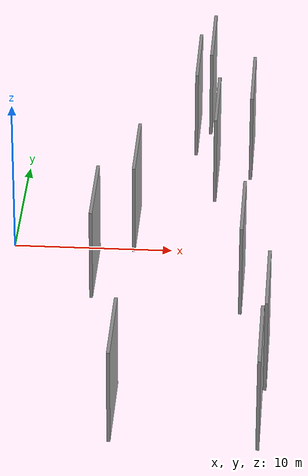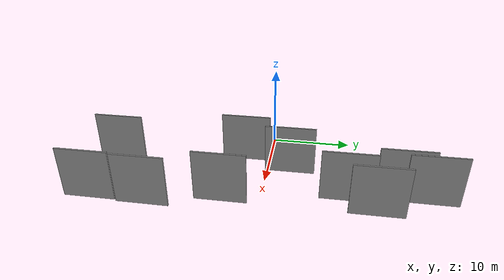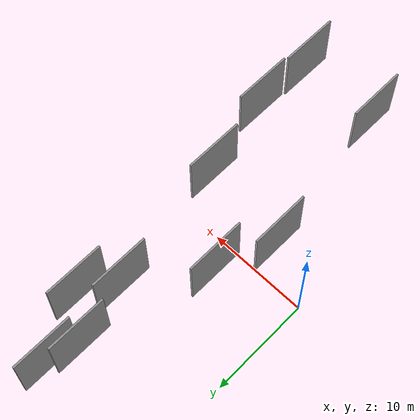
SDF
<sdf version="1.6">
 <world name="default">
  <scene>
   <sky><clouds><speed>12</speed></clouds></sky>
   <ambient>0.4 0.4 0.4 1</ambient>
   <background>0.7 0.7 0.7 1</background>
   <shadows>1</shadows>
  </scene>
  <gravity>0 0 -9.8066</gravity>
  <magnetic_field>6e-06 2.3e-05 -4.2e-05</magnetic_field>
  <physics default="0" name="default_physics" type="ode">
   <ode>
    <solver>
     <type>quick</type>
     <iters>10</iters>
     <sor>1.0</sor>
     <use_dynamic_moi_rescaling>0</use_dynamic_moi_rescaling>
    </solver>
    <constraints>
     <cfm>0</cfm>
     <erp>0.2</erp>
     <contact_max_correcting_vel>100</contact_max_correcting_vel>
     <contact_surface_layer>0.001</contact_surface_layer>
    </constraints>
   </ode>
   <max_step_size>0.004</max_step_size>
   <real_time_factor>1</real_time_factor>
   <real_time_update_rate>250</real_time_update_rate>
  </physics>
  <light name="sun" type="directional">
   <pose>0 0 10 0 0 0</pose>
   <diffuse>0.8 0.8 0.8 1</diffuse>
   <specular>0.2 0.2 0.2 1</specular>
   <attenuation>
    <range>1000</range>
    <constant>0.9</constant>
    <linear>0.01</linear>
    <quadratic>0.001</quadratic>
   </attenuation>
   <direction>-0.5 0.1 -0.9</direction>
  </light>
  <model name="grey_wall_1">
   <static>1</static>
   <pose>16.1557 -18.9139 0.0 0.000000 0.000000 1.570796</pose>
   <link name="link">
    <pose>0 0 3.00 0 0 0</pose>
    <collision name="collision"><geometry><box><size>6.00 0.2 6.00</size></box></geometry></collision>
    <visual name="visual">
     <cast_shadows>0</cast_shadows>
     <geometry><box><size>6.00 0.2 6.00</size></box></geometry>
     <material>
      <script>
       <uri>model://grey_wall/materials/scripts</uri>
       <uri>model://grey_wall/materials/textures</uri>
       <name>vrc/grey_wall</name>
      </script>
     </material>
    </visual>
   </link>
  </model>
  <model name="grey_wall_2">
   <static>1</static>
   <pose>10.8612 15.6181 0.0 0.000000 0.000000 1.570796</pose>
   <link name="link">
    <pose>0 0 3.00 0 0 0</pose>
    <collision name="collision"><geometry><box><size>6.00 0.2 6.00</size></box></geometry></collision>
    <visual name="visual">
     <cast_shadows>0</cast_shadows>
     <geometry><box><size>6.00 0.2 6.00</size></box></geometry>
     <material>
      <script>
       <uri>model://grey_wall/materials/scripts</uri>
       <uri>model://grey_wall/materials/textures</uri>
       <name>vrc/grey_wall</name>
      </script>
     </material>
    </visual>
   </link>
  </model>
  <model name="grey_wall_3">
   <static>1</static>
   <pose>5.3379 -2.9903 0.0 0.000000 0.000000 1.570796</pose>
   <link name="link">
    <pose>0 0 3.00 0 0 0</pose>
    <collision name="collision"><geometry><box><size>6.00 0.2 6.00</size></box></geometry></collision>
    <visual name="visual">
     <cast_shadows>0</cast_shadows>
     <geometry><box><size>6.00 0.2 6.00</size></box></geometry>
     <material>
      <script>
       <uri>model://grey_wall/materials/scripts</uri>
       <uri>model://grey_wall/materials/textures</uri>
       <name>vrc/grey_wall</name>
      </script>
     </material>
    </visual>
   </link>
  </model>
  <model name="grey_wall_4">
   <static>1</static>
   <pose>7.5765 2.7036 0.0 0.000000 0.000000 1.570796</pose>
   <link name="link">
    <pose>0 0 3.00 0 0 0</pose>
    <collision name="collision"><geometry><box><size>6.00 0.2 6.00</size></box></geometry></collision>
    <visual name="visual">
     <cast_shadows>0</cast_shadows>
     <geometry><box><size>6.00 0.2 6.00</size></box></geometry>
     <material>
      <script>
       <uri>model://grey_wall/materials/scripts</uri>
       <uri>model://grey_wall/materials/textures</uri>
       <name>vrc/grey_wall</name>
      </script>
     </material>
    </visual>
   </link>
  </model>
  <model name="grey_wall_5">
   <static>1</static>
   <pose>14.5778 -4.3327 0.0 0.000000 0.000000 1.570796</pose>
   <link name="link">
    <pose>0 0 3.00 0 0 0</pose>
    <collision name="collision"><geometry><box><size>6.00 0.2 6.00</size></box></geometry></collision>
    <visual name="visual">
     <cast_shadows>0</cast_shadows>
     <geometry><box><size>6.00 0.2 6.00</size></box></geometry>
     <material>
      <script>
       <uri>model://grey_wall/materials/scripts</uri>
       <uri>model://grey_wall/materials/textures</uri>
       <name>vrc/grey_wall</name>
      </script>
     </material>
    </visual>
   </link>
  </model>
  <model name="grey_wall_6">
   <static>1</static>
   <pose>11.6989 18.6061 0.0 0.000000 0.000000 1.570796</pose>
   <link name="link">
    <pose>0 0 3.00 0 0 0</pose>
    <collision name="collision"><geometry><box><size>6.00 0.2 6.00</size></box></geometry></collision>
    <visual name="visual">
     <cast_shadows>0</cast_shadows>
     <geometry><box><size>6.00 0.2 6.00</size></box></geometry>
     <material>
      <script>
       <uri>model://grey_wall/materials/scripts</uri>
       <uri>model://grey_wall/materials/textures</uri>
       <name>vrc/grey_wall</name>
      </script>
     </material>
    </visual>
   </link>
  </model>
  <model name="grey_wall_7">
   <static>1</static>
   <pose>14.5986 12.5361 0.0 0.000000 0.000000 1.570796</pose>
   <link name="link">
    <pose>0 0 3.00 0 0 0</pose>
    <collision name="collision"><geometry><box><size>6.00 0.2 6.00</size></box></geometry></collision>
    <visual name="visual">
     <cast_shadows>0</cast_shadows>
     <geometry><box><size>6.00 0.2 6.00</size></box></geometry>
     <material>
      <script>
       <uri>model://grey_wall/materials/scripts</uri>
       <uri>model://grey_wall/materials/textures</uri>
       <name>vrc/grey_wall</name>
      </script>
     </material>
    </visual>
   </link>
  </model>
  <model name="grey_wall_8">
   <static>1</static>
   <pose>16.3713 -12.6752 0.0 0.000000 0.000000 1.570796</pose>
   <link name="link">
    <pose>0 0 3.00 0 0 0</pose>
    <collision name="collision"><geometry><box><size>6.00 0.2 6.00</size></box></geometry></collision>
    <visual name="visual">
     <cast_shadows>0</cast_shadows>
     <geometry><box><size>6.00 0.2 6.00</size></box></geometry>
     <material>
      <script>
       <uri>model://grey_wall/materials/scripts</uri>
       <uri>model://grey_wall/materials/textures</uri>
       <name>vrc/grey_wall</name>
      </script>
     </material>
    </visual>
   </link>
  </model>
  <model name="grey_wall_9">
   <static>1</static>
   <pose>12.3860 9.4239 0.0 0.000000 0.000000 1.570796</pose>
   <link name="link">
    <pose>0 0 3.00 0 0 0</pose>
    <collision name="collision"><geometry><box><size>6.00 0.2 6.00</size></box></geometry></collision>
    <visual name="visual">
     <cast_shadows>0</cast_shadows>
     <geometry><box><size>6.00 0.2 6.00</size></box></geometry>
     <material>
      <script>
       <uri>model://grey_wall/materials/scripts</uri>
       <uri>model://grey_wall/materials/textures</uri>
       <name>vrc/grey_wall</name>
      </script>
     </material>
    </visual>
   </link>
  </model>
  <model name="grey_wall_10">
   <static>1</static>
   <pose>7.6208 -18.6123 0.0 0.000000 0.000000 1.570796</pose>
   <link name="link">
    <pose>0 0 3.00 0 0 0</pose>
    <collision name="collision"><geometry><box><size>6.00 0.2 6.00</size></box></geometry></collision>
    <visual name="visual">
     <cast_shadows>0</cast_shadows>
     <geometry><box><size>6.00 0.2 6.00</size></box></geometry>
     <material>
      <script>
       <uri>model://grey_wall/materials/scripts</uri>
       <uri>model://grey_wall/materials/textures</uri>
       <name>vrc/grey_wall</name>
      </script>
     </material>
    </visual>
   </link>
  </model>
 </world>
</sdf>
